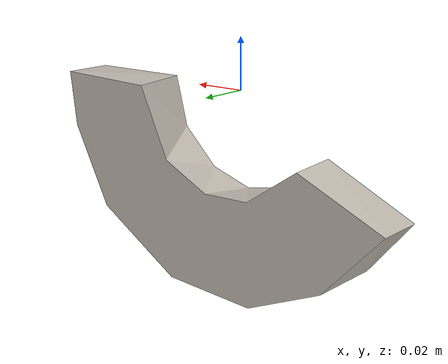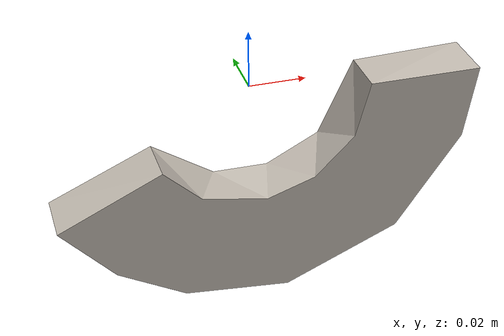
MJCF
<mujoco model="crescent">
  <default>
    <default class="visual">
      <geom group="2" type="mesh" contype="0" conaffinity="0"/>
    </default>
    <default class="collision">
      <geom group="3" type="mesh"/>
    </default>
  </default>
  <asset>
    <texture type="2d" name="texture" file="texture.png"/>
    <material name="Material_0.004" texture="texture" specular="0.0" shininess="0.25"/>
    <mesh file="crescent.obj"/>
  </asset>
  <worldbody>
    <body name="crescent">
      <freejoint/>
      <geom material="Material_0.004" mesh="crescent" class="visual"/>
      <geom mesh="crescent" class="collision"/>
    </body>
  </worldbody>
</mujoco>
